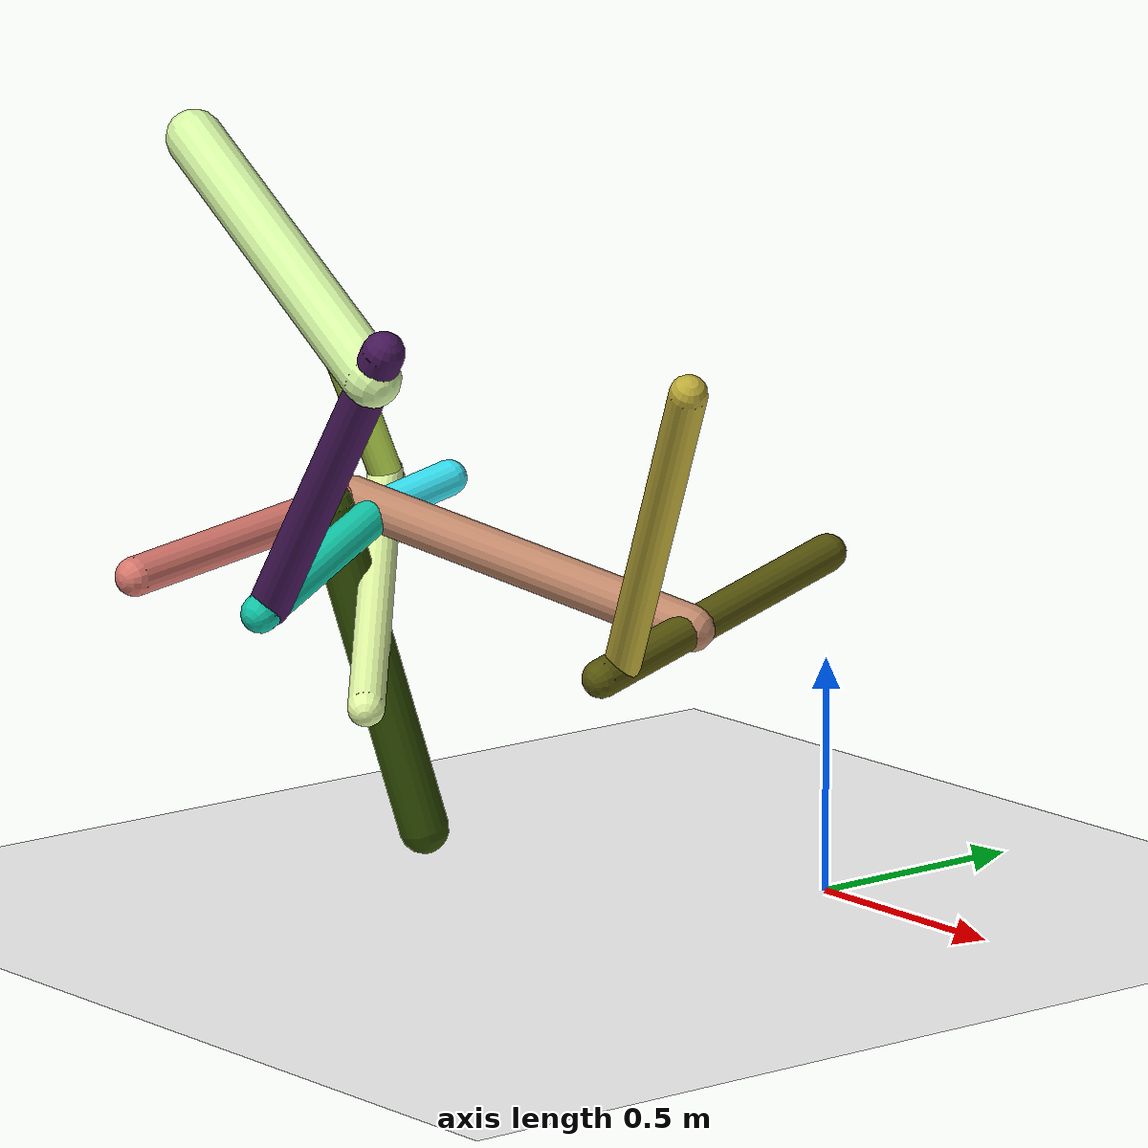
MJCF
<mujoco model="morphology">
  <option timestep="0.01"/>
  <default>
    <default class="/"/>
    <default class="0/"/>
    <default class="0/1/"/>
    <default class="0/2/"/>
    <default class="0/2/3/"/>
    <default class="0/2/3/4/"/>
    <default class="0/2/3/4/5/"/>
    <default class="0/2/3/4/5/6/"/>
    <default class="0/2/3/4/5/6/7/"/>
    <default class="0/2/3/4/5/6/7/8/"/>
    <default class="0/2/9/"/>
    <default class="0/2/9/10/"/>
  </default>
  <asset>
    <texture name="texplane" type="2d" builtin="checker" rgb1="0.10000000000000001 0.20000000000000001 0.29999999999999999" rgb2="0.20000000000000001 0.29999999999999999 0.40000000000000002" width="300" height="300"/>
    <material name="MatPlane" class="/" texture="texplane" texrepeat="20 20" specular="1" shininess="1" reflectance="0.5"/>
  </asset>
  <worldbody>
    <light name="//unnamed_light_0" class="/" directional="true" pos="0 0 1.5" dir="0 0 -1.3" cutoff="100" exponent="1" diffuse="1 1 1" specular="0.10000000000000001 0.10000000000000001 0.10000000000000001"/>
    <geom name="ground" class="/" type="plane" size="15 15 0.5" material="MatPlane" rgba="1 1 1 1"/>
    <site name="body" class="/" size="9.9999999999999995e-07 9.9999999999999995e-07 9.9999999999999995e-07" pos="0 0 0.72464755773544309"/>
    <body pos="0 0 0.72464755773544309" name="0/">
      <freejoint name="0/"/>
      <geom name="0/geom" class="0/" type="capsule" contype="1" conaffinity="1" condim="3" size="0.040045441267250508" rgba="0.34293771782213489 0.33257803609427805 0.045720974108114376 1" friction="0.59999999999999998 0.10000000000000001 0.10000000000000001" fromto="0 0 0 0.075753191842680478 -0.66643313227412126 -0.15089693167406826"/>
      <site name="0/end0" class="0/" size="0.0050000000000000001" pos="0.075753191842680478 -0.66643313227412126 -0.15089693167406826"/>
      <site name="0/attach1" class="0/" size="9.9999999999999995e-07 9.9999999999999995e-07 9.9999999999999995e-07" pos="0.069074849063137628 -0.6076809029790986 -0.13759397493274045"/>
      <body pos="0.069074849063137628 -0.6076809029790986 -0.13759397493274045" name="0/1/">
        <joint name="0/1/joint/" class="0/" type="hinge" axis="0 0 1" limited="true" range="-31.076789691493929 31.076789691493929"/>
        <geom name="0/1/geom" class="0/1/" type="capsule" contype="1" conaffinity="1" condim="3" size="0.038709186596289871" rgba="0.74649038377504029 0.673781340722309 0.22215702807416671 1" friction="0.59999999999999998 0.10000000000000001 0.10000000000000001" fromto="0 0 0 0.52661635956396458 -0.2668623737751894 0.68681984345438374"/>
        <site name="0/1/end1" class="0/1/" size="0.0050000000000000001" pos="0.52661635956396458 -0.2668623737751894 0.68681984345438374"/>
      </body>
      <site name="0/attach2" class="0/" size="9.9999999999999995e-07 9.9999999999999995e-07 9.9999999999999995e-07" pos="0.045922499103104072 -0.40399980746282255 -0.091475541041946384"/>
      <body pos="0.045922499103104072 -0.40399980746282255 -0.091475541041946384" name="0/2/">
        <joint name="0/2/joint/" class="0/" type="hinge" axis="0 0 1" limited="true" range="-39.793520929554539 39.793520929554539"/>
        <geom name="0/2/geom" class="0/2/" type="capsule" contype="1" conaffinity="1" condim="3" size="0.048745196587429693" rgba="0.7609665404067435 0.53756656653799462 0.41880300290458072 1" friction="0.59999999999999998 0.10000000000000001 0.10000000000000001" fromto="0 0 0 -0.73682910850401329 -0.30484661706870031 0.18724163519033188"/>
        <site name="0/2/end2" class="0/2/" size="0.0050000000000000001" pos="-0.73682910850401329 -0.30484661706870031 0.18724163519033188"/>
        <site name="0/2/attach3" class="0/2/" size="9.9999999999999995e-07 9.9999999999999995e-07 9.9999999999999995e-07" pos="-0.67779435673305077 -0.28042230462072054 0.17223983446466176"/>
        <body pos="-0.67779435673305077 -0.28042230462072054 0.17223983446466176" name="0/2/3/">
          <joint name="0/2/3/joint/" class="0/2/" type="hinge" axis="0 0.52337490597891356 0.85210252187841995" limited="true" range="-59.543395276491026 59.543395276491026"/>
          <geom name="0/2/3/geom" class="0/2/3/" type="capsule" contype="1" conaffinity="1" condim="3" size="0.038192019048961946" rgba="0.21598582191533022 0.9007398090976152 0.96926774605171717 1" friction="0.59999999999999998 0.10000000000000001 0.10000000000000001" fromto="0 0 0 -9.9229692386737511e-05 0.18707734286184741 0.039225099158250121"/>
          <site name="0/2/3/end3" class="0/2/3/" size="0.0050000000000000001" pos="-9.9229692386737511e-05 0.18707734286184741 0.039225099158250121"/>
          <site name="0/2/3/attach4" class="0/2/3/" size="9.9999999999999995e-07 9.9999999999999995e-07 9.9999999999999995e-07" pos="-8.3050224715403511e-06 0.015657425706091962 0.0032829420521433136"/>
          <body pos="-8.3050224715403511e-06 0.015657425706091962 0.0032829420521433136" name="0/2/3/4/">
            <joint name="0/2/3/4/joint/" class="0/2/3/" type="hinge" axis="-0.99999986525092854 -0.00050808380788608387 -0.00010653154166161138" limited="true" range="-61.978083028125198 61.978083028125198"/>
            <geom name="0/2/3/4/geom" class="0/2/3/4/" type="capsule" contype="1" conaffinity="1" condim="3" size="0.041024171292855557" rgba="0.060363746349529346 0.77008009219332341 0.65204677563109914 1" friction="0.59999999999999998 0.10000000000000001 0.10000000000000001" fromto="0 0 0 0.086172044241378698 -0.38928215644313452 -0.15515602606738876"/>
            <site name="0/2/3/4/end4" class="0/2/3/4/" size="0.0050000000000000001" pos="0.086172044241378698 -0.38928215644313452 -0.15515602606738876"/>
            <site name="0/2/3/4/attach5" class="0/2/3/4/" size="9.9999999999999995e-07 9.9999999999999995e-07 9.9999999999999995e-07" pos="0.079738786998178005 -0.36021992083489507 -0.14357270299188765"/>
            <body pos="0.079738786998178005 -0.36021992083489507 -0.14357270299188765" name="0/2/3/4/5/">
              <joint name="0/2/3/4/5/joint/" class="0/2/3/4/" type="hinge" axis="0.97950580196677939 0.18710215785642537 0.074573228700958671" limited="true" range="-40.740826320233026 40.740826320233026"/>
              <geom name="0/2/3/4/5/geom" class="0/2/3/4/5/" type="capsule" contype="1" conaffinity="1" condim="3" size="0.044413565631589921" rgba="0.27134116679896858 0.091535716717004667 0.3488336907845383 1" friction="0.59999999999999998 0.10000000000000001 0.10000000000000001" fromto="0 0 0 0.4526522966071711 -0.054617875635463498 0.60545444785780478"/>
              <site name="0/2/3/4/5/end5" class="0/2/3/4/5/" size="0.0050000000000000001" pos="0.4526522966071711 -0.054617875635463498 0.60545444785780478"/>
              <site name="0/2/3/4/5/attach6" class="0/2/3/4/5/" size="9.9999999999999995e-07 9.9999999999999995e-07 9.9999999999999995e-07" pos="0.40859618380808194 -0.049301982381682347 0.54652628235534984"/>
              <body pos="0.40859618380808194 -0.049301982381682347 0.54652628235534984" name="0/2/3/4/5/6/">
                <joint name="0/2/3/4/5/6/joint/" class="0/2/3/4/5/" type="hinge" axis="0.80207399319033668 0.05365758511891211 -0.59480935854012496" limited="true" range="-49.144453733465824 49.144453733465824"/>
                <geom name="0/2/3/4/5/6/geom" class="0/2/3/4/5/6/" type="capsule" contype="1" conaffinity="1" condim="3" size="0.060262809462557493" rgba="0.84264759518553456 0.97607562354643362 0.64544628404134863 1" friction="0.59999999999999998 0.10000000000000001 0.10000000000000001" fromto="0 0 0 -0.72172460619853851 0.10239811915860719 0.37422789668478673"/>
                <site name="0/2/3/4/5/6/end6" class="0/2/3/4/5/6/" size="0.0050000000000000001" pos="-0.72172460619853851 0.10239811915860719 0.37422789668478673"/>
                <site name="0/2/3/4/5/6/attach7" class="0/2/3/4/5/6/" size="9.9999999999999995e-07 9.9999999999999995e-07 9.9999999999999995e-07" pos="-0.18120523525295429 0.025709356605324283 0.093958351252791714"/>
                <body pos="-0.18120523525295429 0.025709356605324283 0.093958351252791714" name="0/2/3/4/5/6/7/">
                  <joint name="0/2/3/4/5/6/7/joint/" class="0/2/3/4/5/6/" type="hinge" axis="-2.7755575615628914e-17 -0.96454367276192265 0.26392329062616104" limited="true" range="-42.452252455018801 42.452252455018801"/>
                  <geom name="0/2/3/4/5/6/7/geom" class="0/2/3/4/5/6/7/" type="capsule" contype="1" conaffinity="1" condim="3" size="0.036266219819648692" rgba="0.66917472167384373 0.79603414313910204 0.27659314490692799 1" friction="0.59999999999999998 0.10000000000000001 0.10000000000000001" fromto="0 0 0 -0.72187727722889772 0.73451548286054225 -0.59755227910122521"/>
                  <site name="0/2/3/4/5/6/7/end7" class="0/2/3/4/5/6/7/" size="0.0050000000000000001" pos="-0.72187727722889772 0.73451548286054225 -0.59755227910122521"/>
                  <site name="0/2/3/4/5/6/7/attach8" class="0/2/3/4/5/6/7/" size="9.9999999999999995e-07 9.9999999999999995e-07 9.9999999999999995e-07" pos="-0.61636246383690696 0.62715337775997804 -0.51020970826514112"/>
                  <body pos="-0.61636246383690696 0.62715337775997804 -0.51020970826514112" name="0/2/3/4/5/6/7/8/">
                    <joint name="0/2/3/4/5/6/7/8/joint/" class="0/2/3/4/5/6/7/" type="hinge" axis="-0.79525155732816533 -0.47030432670534411 0.38260789438975418" limited="true" range="-58.458942502677928 58.458942502677928"/>
                    <geom name="0/2/3/4/5/6/7/8/geom" class="0/2/3/4/5/6/7/8/" type="capsule" contype="1" conaffinity="1" condim="3" size="0.038843444812404412" rgba="0.89997062140096373 0.98983205887951686 0.65193687876569628 1" friction="0.59999999999999998 0.10000000000000001 0.10000000000000001" fromto="0 0 0 0.66084244472716636 -0.56581310477380975 -0.30049808315892201"/>
                    <site name="0/2/3/4/5/6/7/8/end8" class="0/2/3/4/5/6/7/8/" size="0.0050000000000000001" pos="0.66084244472716636 -0.56581310477380975 -0.30049808315892201"/>
                  </body>
                </body>
              </body>
            </body>
          </body>
        </body>
        <site name="0/2/attach9" class="0/2/" size="9.9999999999999995e-07 9.9999999999999995e-07 9.9999999999999995e-07" pos="-0.73562348833590929 -0.30434781860176341 0.18693526524771037"/>
        <body pos="-0.73562348833590929 -0.30434781860176341 0.18693526524771037" name="0/2/9/">
          <geom name="0/2/9/geom" class="0/2/9/" type="capsule" contype="1" conaffinity="1" condim="3" size="0.040911320342603516" rgba="0.85079384437899142 0.47187475112534538 0.42929778025375398 1" friction="0.59999999999999998 0.10000000000000001 0.10000000000000001" fromto="0 0 0 0.085304987615265393 -0.6230626732874962 -0.059420616979015684"/>
          <site name="0/2/9/end9" class="0/2/9/" size="0.0050000000000000001" pos="0.085304987615265393 -0.6230626732874962 -0.059420616979015684"/>
          <site name="0/2/9/attach10" class="0/2/9/" size="9.9999999999999995e-07 9.9999999999999995e-07 9.9999999999999995e-07" pos="0.0090766858336260754 -0.066295585969674081 -0.0063225174451843778"/>
          <body pos="0.0090766858336260754 -0.066295585969674081 -0.0063225174451843778" name="0/2/9/10/">
            <joint name="0/2/9/10/joint/" class="0/2/9/" type="hinge" axis="1.3877787807814457e-17 -0.094937842704721553 0.99548320228046716" limited="true" range="-66.850624269867581 66.850624269867581"/>
            <geom name="0/2/9/10/geom" class="0/2/9/10/" type="capsule" contype="1" conaffinity="1" condim="3" size="0.052835443030587237" rgba="0.19767061079687887 0.30858037882276956 0.017432177088381851 1" friction="0.59999999999999998 0.10000000000000001 0.10000000000000001" fromto="0 0 0 0.049286360879582602 0.20714113141818058 -0.713784743136332"/>
            <site name="0/2/9/10/end10" class="0/2/9/10/" size="0.0050000000000000001" pos="0.049286360879582602 0.20714113141818058 -0.713784743136332"/>
          </body>
        </body>
      </body>
      <camera name="0/iso" class="0/" mode="trackcom" pos="-2.2999999999999998 -2.2999999999999998 1" xyaxes="0.45000000000000001 -0.45000000000000001 0 0.29999999999999999 0.14999999999999999 0.93999999999999995"/>
    </body>
  </worldbody>
  <actuator>
    <motor name="0/1/motor" class="0/1/" ctrllimited="true" ctrlrange="-1 1" gear="73" joint="0/1/joint/"/>
    <motor name="0/2/motor" class="0/2/" ctrllimited="true" ctrlrange="-1 1" gear="83" joint="0/2/joint/"/>
    <motor name="0/2/3/motor" class="0/2/3/" ctrllimited="true" ctrlrange="-1 1" gear="91" joint="0/2/3/joint/"/>
    <motor name="0/2/3/4/motor" class="0/2/3/4/" ctrllimited="true" ctrlrange="-1 1" gear="66" joint="0/2/3/4/joint/"/>
    <motor name="0/2/3/4/5/motor" class="0/2/3/4/5/" ctrllimited="true" ctrlrange="-1 1" gear="67" joint="0/2/3/4/5/joint/"/>
    <motor name="0/2/3/4/5/6/motor" class="0/2/3/4/5/6/" ctrllimited="true" ctrlrange="-1 1" gear="88" joint="0/2/3/4/5/6/joint/"/>
    <motor name="0/2/3/4/5/6/7/motor" class="0/2/3/4/5/6/7/" ctrllimited="true" ctrlrange="-1 1" gear="81" joint="0/2/3/4/5/6/7/joint/"/>
    <motor name="0/2/3/4/5/6/7/8/motor" class="0/2/3/4/5/6/7/8/" ctrllimited="true" ctrlrange="-1 1" gear="69" joint="0/2/3/4/5/6/7/8/joint/"/>
    <motor name="0/2/9/10/motor" class="0/2/9/10/" ctrllimited="true" ctrlrange="-1 1" gear="95" joint="0/2/9/10/joint/"/>
  </actuator>
  <sensor>
    <subtreelinvel name="velocity" body="0/"/>
  </sensor>
</mujoco>
